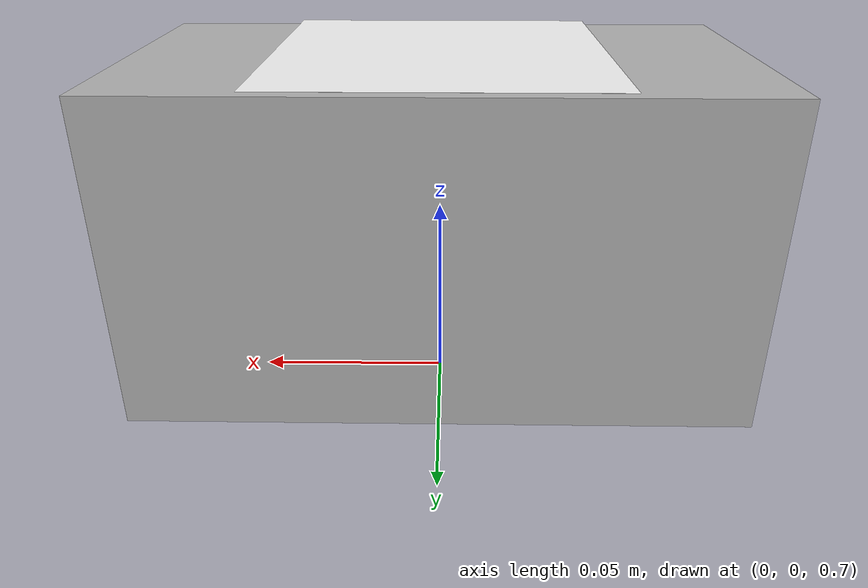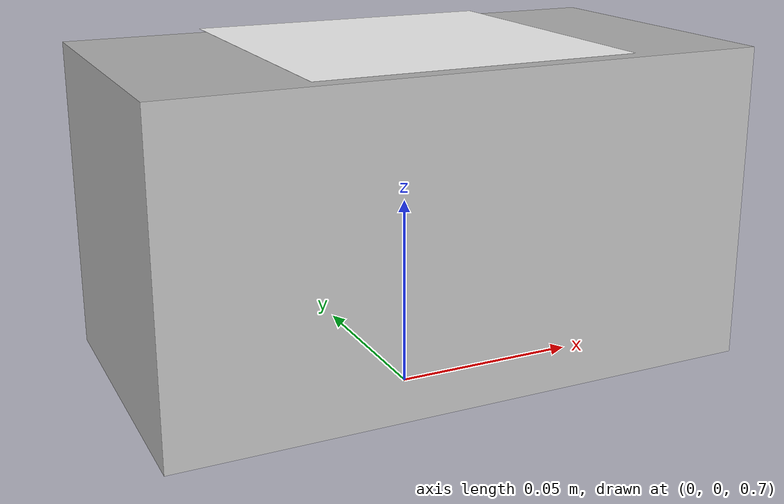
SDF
<?xml version="1.0" ?>
<sdf version="1.5">
  <model name="carga_util">
    <pose>0 0 0.75  0 0 0</pose>
    <static>false</static>
    <link name="link">
      <inertial>
        <mass>0.2</mass>
        <inertia>
          <ixx>0.3</ixx>
          <ixy>0</ixy>
          <ixz>0</ixz>
          <iyy>0.3</iyy>
          <iyz>0</iyz>
          <izz>0.1</izz>
        </inertia>
      </inertial>
      <collision name="collision">
        <geometry>
          <box>
              <size>0.15 0.08 0.08</size>
          </box>
        </geometry>
	      <surface>
          <contact>
            <ode>
              <max_vel>0.1</max_vel>
              <min_depth>0.001</min_depth>
            </ode>
          </contact>
        </surface>
      </collision>
      <visual name="visual">
        <geometry>
           <box>
              <size>0.15 0.08 0.08</size>
          </box>
	      </geometry>
      </visual>
    </link>

    <link name='marker'>
      <pose relative_to='link'>0 0 0.041 0 0 0</pose>
      <visual name='visual'>
        <geometry>
          <box>
            <size>0.08 0.08 1e-5</size>
          </box>
        </geometry>
        <material>
          <script>
            <uri>model://carga_util/materials/scripts</uri>
            <uri>model://carga_util/materials/textures</uri>
            <name>ArucoVisualMarker2/Marker</name>
          </script>
          <ambient>1 1 1 1</ambient>
          <diffuse>1 1 1 1</diffuse>
          <specular>0 0 0 1</specular>
          <emissive>1 1 1 0</emissive>
          <shader type='vertex'>
            <normal_map>__default__</normal_map>
          </shader>
        </material>
        <pose frame=''>0 0 0 0 -0 0</pose>
        <cast_shadows>1</cast_shadows>
        <transparency>0</transparency>
      </visual>
      <collision name='collision'>
        <laser_retro>0</laser_retro>
        <max_contacts>10</max_contacts>
        <pose frame=''>0 0 0 0 -0 0</pose>
        <geometry>
          <box>
            <size>0.08 0.08 1e-05</size>
          </box>
        </geometry>
      </collision>
    </link>
    <joint name='market_joint' type='revolute'>
      <child>marker</child>
      <parent>link</parent>
      <axis>
        <xyz>0 0 1</xyz>
        <limit>
          <lower>0</lower>
          <upper>0</upper>
          <effort>10</effort>
          <velocity>-1</velocity>
        </limit>
      </axis>
    </joint>

    <link name='marker_pad'>
      <pose frame='marker'>0 0 -1e-5 0 -0 0</pose>
      <visual name='visual'>
        <geometry>
          <box>
            <size>0.08 0.08 1e-5</size>
          </box>
        </geometry>
        <material>
          <lighting>1</lighting>
          <script>
            <uri>file://media/materials/scripts/gazebo.material</uri>
            <name>Gazebo/White</name>
          </script>
          <ambient>0.3 0.3 0.3 1</ambient>
          <diffuse>0.7 0.7 0.7 1</diffuse>
          <specular>0.01 0.01 0.01 1</specular>
          <emissive>1 1 1 0</emissive>
          <shader type='vertex'>
            <normal_map>__default__</normal_map>
          </shader>
        </material>
        <cast_shadows>1</cast_shadows>
        <transparency>0</transparency>
      </visual>
      <collision name='collision'>
        <laser_retro>0</laser_retro>
        <max_contacts>10</max_contacts>
        <pose frame=''>0 0 0 0 -0 0</pose>
        <geometry>
          <box>
            <size>0.08 0.08 1e-5</size>
          </box>
        </geometry>
      </collision>
    </link>
    <joint name='marker_JOINT_marker_pad' type='revolute'>
      <parent>marker</parent>
      <child>marker_pad</child>
      <pose frame=''>0 0 0 0 -0 0</pose>
      <axis>
        <xyz>0 0 1</xyz>
        <limit>
          <upper>0</upper>
          <lower>0</lower>
        </limit>
      </axis>
    </joint>

  </model>
</sdf>
